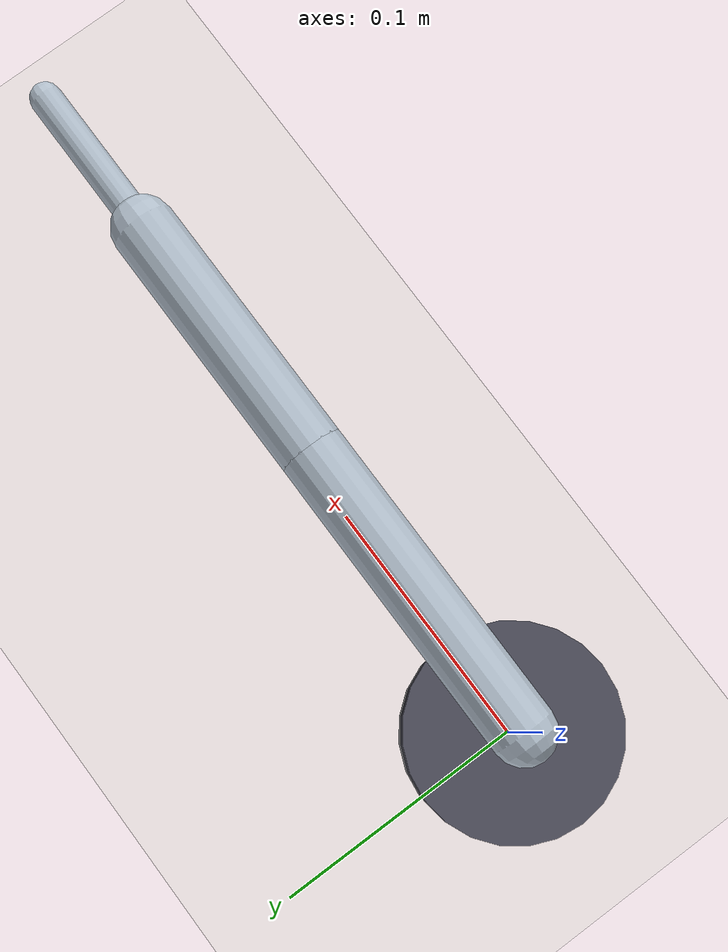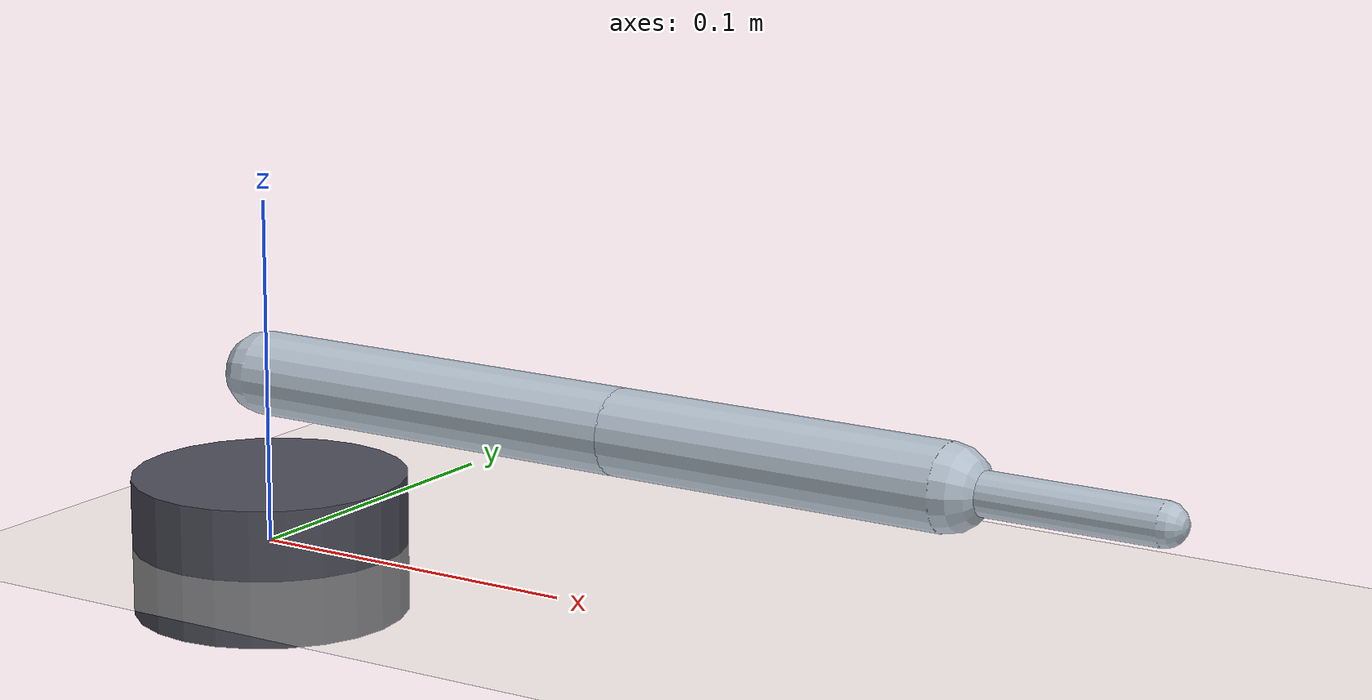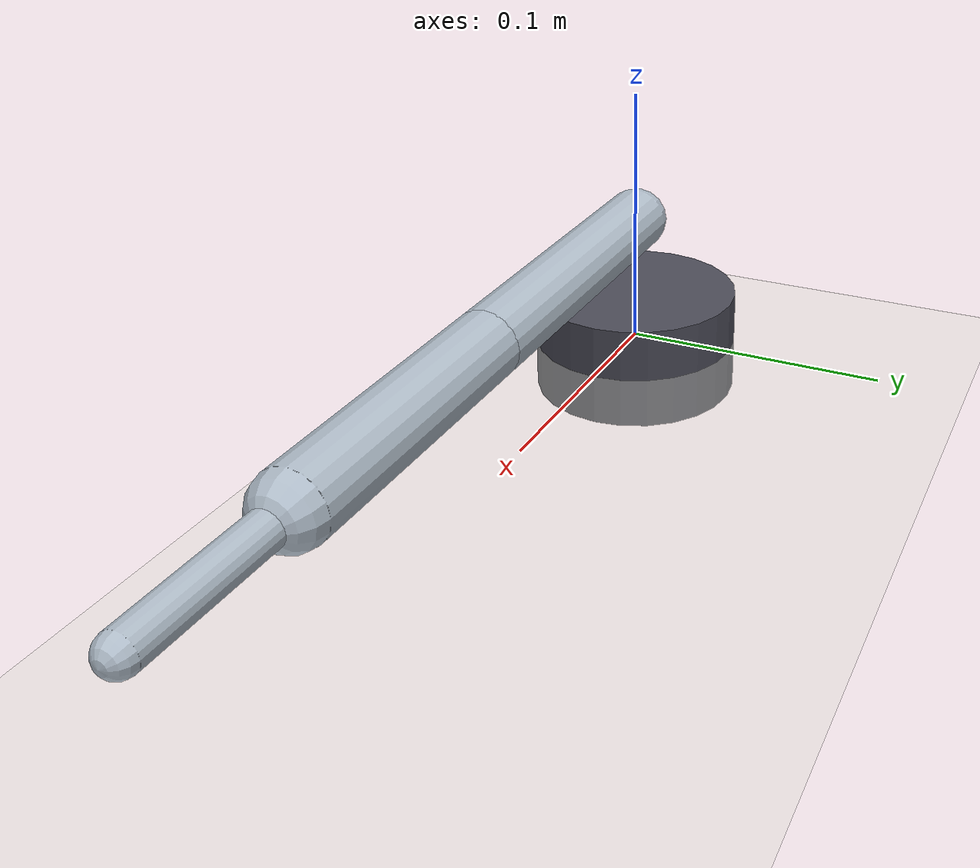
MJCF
<mujoco model="arm4dof">
  <compiler angle="radian" autolimits="true"/>
  <option gravity="0 0 -9.81"/>

  <default>
    <joint damping="0.2" frictionloss="0.05"/>
    <geom type="capsule" size="0.012" rgba="0.7 0.75 0.8 1"/>
  </default>

  <worldbody>
    <geom name="floor" type="plane" size="0.5 0.5 0.01" rgba="0.9 0.9 0.85 1"/>

    <body name="base" pos="0 0 0">
      <geom type="cylinder" size="0.04 0.02" rgba="0.3 0.3 0.35 1"/>
      <joint name="base_yaw" type="hinge" axis="0 0 1" range="-1.833 1.833"/>
      <!-- range = +-105 deg placeholder, from A0 span (230-20=210 deg) -->

      <body name="shoulder_link" pos="0 0 0.05">
        <!-- BASE_HEIGHT = 0.05 placeholder -->
        <joint name="shoulder_pitch" type="hinge" axis="0 1 0" range="-1.571 1.571"/>
        <!-- range = +-90 deg placeholder, from A1 span (201-21=180 deg) -->
        <geom fromto="0 0 0  0.12 0 0"/>
        <!-- L2 = 0.12 placeholder -->

        <body name="elbow_link" pos="0.12 0 0">
          <joint name="elbow_pitch" type="hinge" axis="0 1 0" range="-2.007 2.007"/>
          <!-- range = +-115 deg placeholder, from A2 span (110-(-120)=230 deg) -->
          <geom fromto="0 0 0  0.10 0 0"/>
          <!-- L3 = 0.10 placeholder -->

          <body name="wrist_link" pos="0.10 0 0">
            <joint name="wrist_pitch" type="hinge" axis="0 1 0" range="-1.571 1.571"/>
            <!-- range = +-90 deg placeholder, SG90 standard 0-180 centered at 90 -->
            <geom fromto="0 0 0  0.06 0 0" size="0.006"/>
            <!-- L4 = 0.06 placeholder, wrist axis to pen tip -->
            <site name="pen_tip" pos="0.06 0 0" size="0.004" rgba="1 0 0 1"/>
          </body>
        </body>
      </body>
    </body>
  </worldbody>

  <actuator>
    <position name="act_base_yaw" joint="base_yaw" kp="15" ctrlrange="-1.833 1.833"/>
    <position name="act_shoulder" joint="shoulder_pitch" kp="15" ctrlrange="-1.571 1.571"/>
    <position name="act_elbow" joint="elbow_pitch" kp="15" ctrlrange="-2.007 2.007"/>
    <position name="act_wrist" joint="wrist_pitch" kp="8" ctrlrange="-1.571 1.571"/>
  </actuator>
</mujoco>
